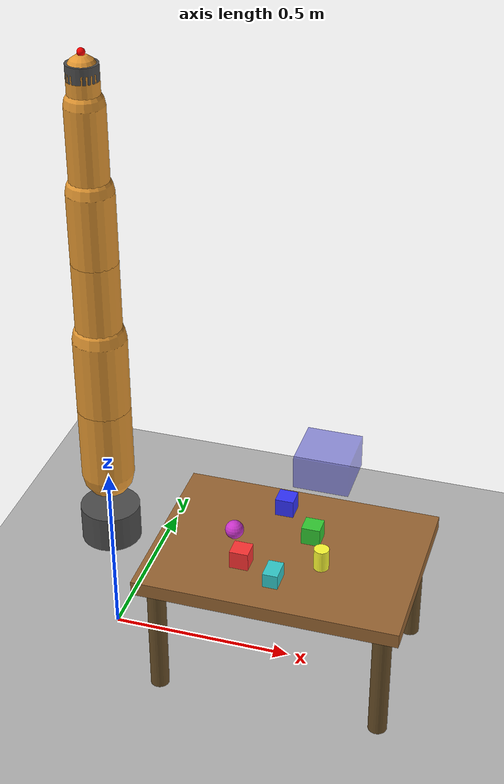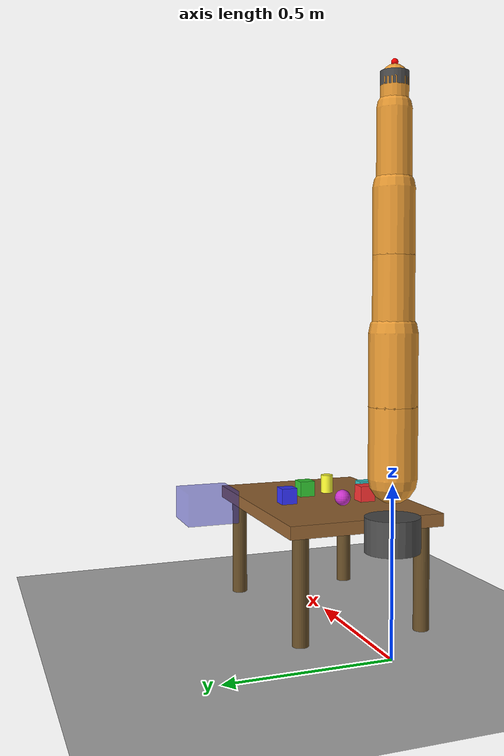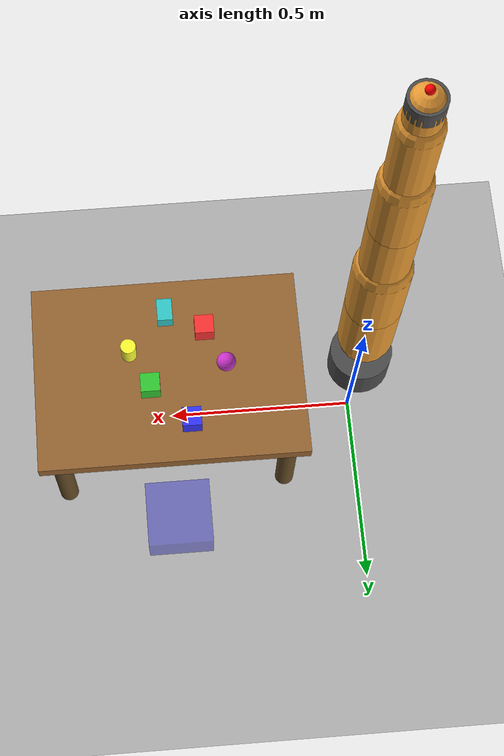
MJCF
<mujoco model="messy_table">
  <compiler angle="radian" autolimits="true"/>

  <option gravity="0 0 -9.81" timestep="0.002" integrator="implicitfast">
    <flag contact="enable"/>
  </option>

  <default>
    <joint damping="5.0" armature="0.1"/>
    <geom condim="4" friction="1.0 0.005 0.001"/>
    <motor ctrlrange="-87 87" ctrllimited="true"/>

    <default class="object">
      <geom mass="0.08" friction="1.5 0.01 0.001" condim="4" rgba="1 0 0 1"/>
      <joint damping="0.01"/>
    </default>
  </default>

  <asset>
    <texture name="grid" type="2d" builtin="checker" rgb1="0.8 0.8 0.8" rgb2="0.6 0.6 0.6" width="512" height="512"/>
    <material name="grid" texture="grid" texrepeat="8 8" reflectance="0.1"/>
    <material name="wood" rgba="0.6 0.4 0.2 1" reflectance="0.05"/>
  </asset>

  <worldbody>
    <light directional="true" pos="0 0 3" dir="0 0 -1" diffuse="0.8 0.8 0.8"/>
    <light directional="true" pos="1 1 2" dir="-0.5 -0.5 -1" diffuse="0.3 0.3 0.3"/>

    <geom name="floor" type="plane" size="2 2 0.1" material="grid"/>

    <body name="table" pos="0.5 0 0.35">
      <geom name="table_top" type="box" size="0.35 0.25 0.02" material="wood" mass="20"/>
      <geom type="cylinder" pos="-0.30 -0.20 -0.175" size="0.025 0.175" rgba="0.4 0.3 0.15 1"/>
      <geom type="cylinder" pos="0.30 -0.20 -0.175" size="0.025 0.175" rgba="0.4 0.3 0.15 1"/>
      <geom type="cylinder" pos="-0.30 0.20 -0.175" size="0.025 0.175" rgba="0.4 0.3 0.15 1"/>
      <geom type="cylinder" pos="0.30 0.20 -0.175" size="0.025 0.175" rgba="0.4 0.3 0.15 1"/>
    </body>

    <body name="bin" pos="0.5 0.4 0.38">
      <geom type="box" size="0.08 0.08 0.05" rgba="0.2 0.2 0.8 0.5" mass="0.5"/>
    </body>

    <camera name="overhead" pos="0.5 0 1.5" quat="1 0 0 0" fovy="45"/>
    <camera name="front" pos="0.5 -1.0 0.8" xyaxes="1 0 0 0 0.5 1" fovy="45"/>

    <body name="base" pos="0 0 0.36">
      <geom type="cylinder" size="0.08 0.05" rgba="0.3 0.3 0.3 1"/>

      <body name="link1" pos="0 0 0.1575">
        <joint name="joint_a1" type="hinge" axis="0 0 1" range="-2.96706 2.96706"/>
        <geom type="capsule" fromto="0 0 0 0 0 0.2025" size="0.07" rgba="0.9 0.6 0.2 1"/>

        <body name="link2" pos="0 0 0.2025">
          <joint name="joint_a2" type="hinge" axis="0 1 0" range="-2.0944 2.0944"/>
          <geom type="capsule" fromto="0 0 0 0 0 0.2045" size="0.07" rgba="0.9 0.6 0.2 1"/>

          <body name="link3" pos="0 0 0.2045">
            <joint name="joint_a3" type="hinge" axis="0 0 1" range="-2.96706 2.96706"/>
            <geom type="capsule" fromto="0 0 0 0 0 0.2155" size="0.06" rgba="0.9 0.6 0.2 1"/>

            <body name="link4" pos="0 0 0.2155">
              <joint name="joint_a4" type="hinge" axis="0 -1 0" range="-2.0944 2.0944"/>
              <geom type="capsule" fromto="0 0 0 0 0 0.1845" size="0.06" rgba="0.9 0.6 0.2 1"/>

              <body name="link5" pos="0 0 0.1845">
                <joint name="joint_a5" type="hinge" axis="0 0 1" range="-2.96706 2.96706"/>
                <geom type="capsule" fromto="0 0 0 0 0 0.2155" size="0.05" rgba="0.9 0.6 0.2 1"/>

                <body name="link6" pos="0 0 0.2155">
                  <joint name="joint_a6" type="hinge" axis="0 1 0" range="-2.0944 2.0944"/>
                  <geom type="capsule" fromto="0 0 0 0 0 0.081" size="0.04" rgba="0.9 0.6 0.2 1"/>

                  <body name="link7" pos="0 0 0.081">
                    <joint name="joint_a7" type="hinge" axis="0 0 1" range="-3.05433 3.05433"/>
                    <geom type="cylinder" size="0.04 0.02" rgba="0.3 0.3 0.3 1"/>
                    <site name="end_effector" pos="0 0 0.045" size="0.01" rgba="1 0 0 1"/>
                    <camera name="wrist" pos="0 0 0.045" fovy="60"/>
                  </body>
                </body>
              </body>
            </body>
          </body>
        </body>
      </body>
    </body>

    <body name="object_0" pos="0.4 -0.1 0.40">
      <freejoint name="obj0_free"/>
      <geom class="object" type="box" size="0.025 0.025 0.025" rgba="1.0 0.2 0.2 1"/>
    </body>

    <body name="object_1" pos="0.55 0.05 0.40">
      <freejoint name="obj1_free"/>
      <geom class="object" type="box" size="0.025 0.025 0.025" rgba="0.2 0.8 0.2 1"/>
    </body>

    <body name="object_2" pos="0.45 0.15 0.40">
      <freejoint name="obj2_free"/>
      <geom class="object" type="box" size="0.025 0.025 0.025" rgba="0.2 0.2 1.0 1"/>
    </body>

    <body name="object_3" pos="0.6 -0.05 0.40">
      <freejoint name="obj3_free"/>
      <geom class="object" type="cylinder" size="0.02 0.03" rgba="1.0 1.0 0.2 1"/>
    </body>

    <body name="object_4" pos="0.35 0.0 0.40">
      <freejoint name="obj4_free"/>
      <geom class="object" type="sphere" size="0.025" rgba="0.8 0.2 0.8 1"/>
    </body>

    <body name="object_5" pos="0.5 -0.15 0.40">
      <freejoint name="obj5_free"/>
      <geom class="object" type="box" size="0.02 0.03 0.02" rgba="0.2 0.8 0.8 1"/>
    </body>
  </worldbody>

  <actuator>
    <position name="a1" joint="joint_a1" kp="500"/>
    <position name="a2" joint="joint_a2" kp="500"/>
    <position name="a3" joint="joint_a3" kp="500"/>
    <position name="a4" joint="joint_a4" kp="500"/>
    <position name="a5" joint="joint_a5" kp="500"/>
    <position name="a6" joint="joint_a6" kp="500"/>
    <position name="a7" joint="joint_a7" kp="500"/>
  </actuator>

  <sensor>
    <framepos name="ee_pos" objtype="site" objname="end_effector"/>
  </sensor>
</mujoco>
